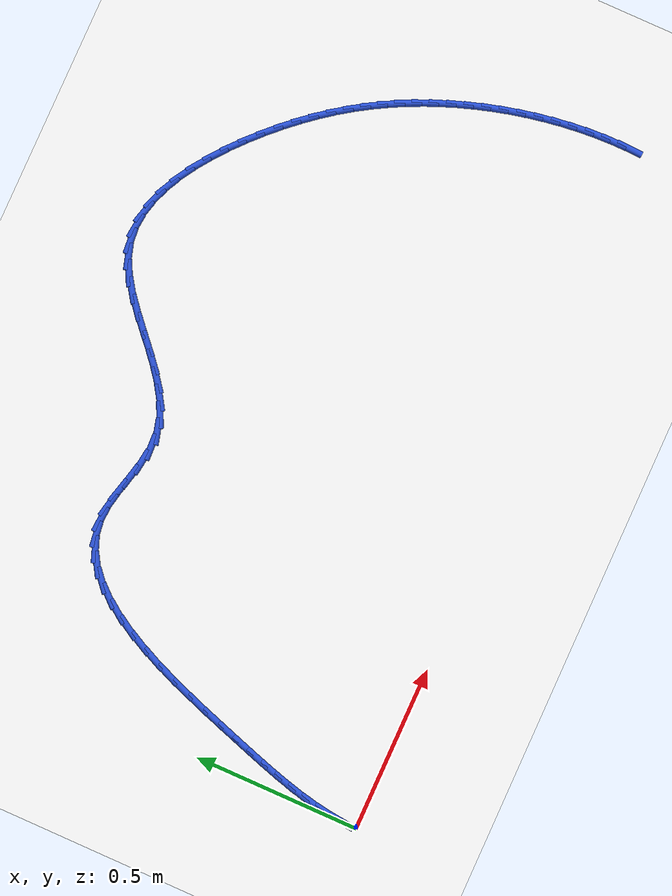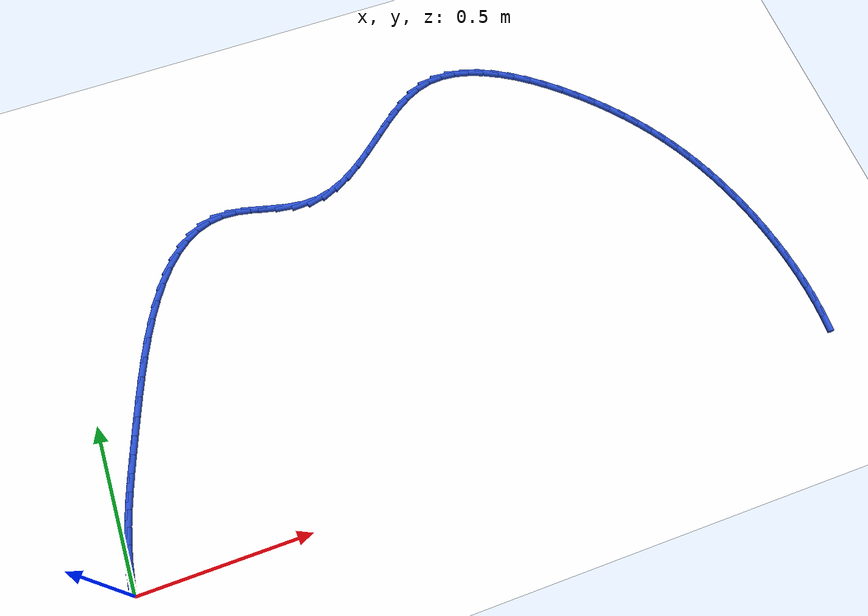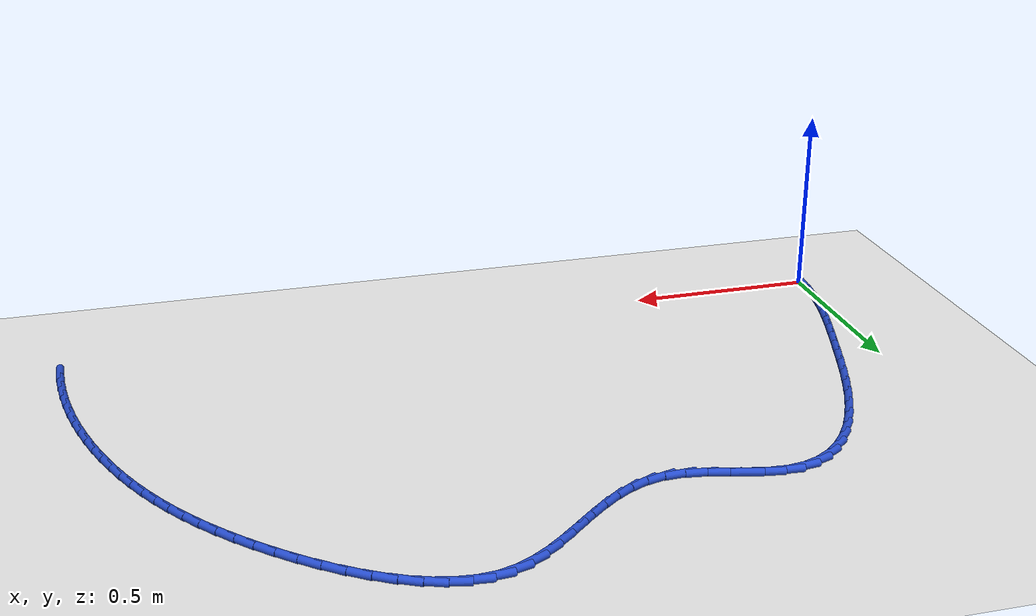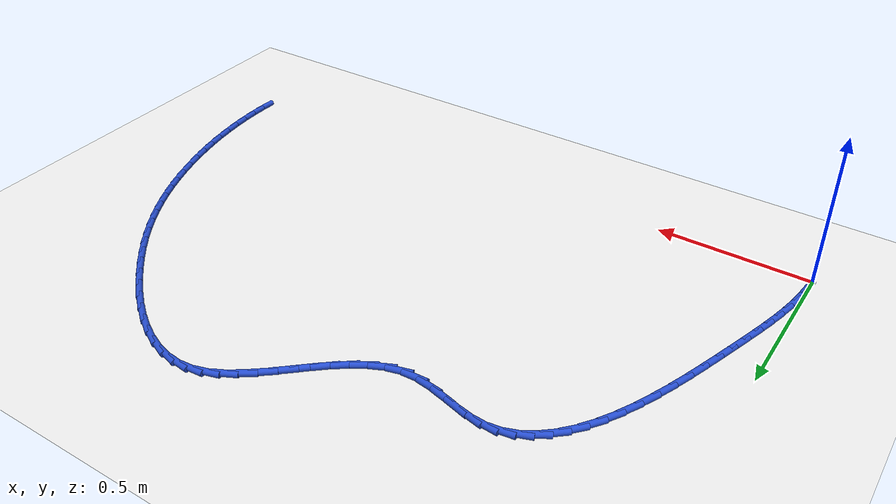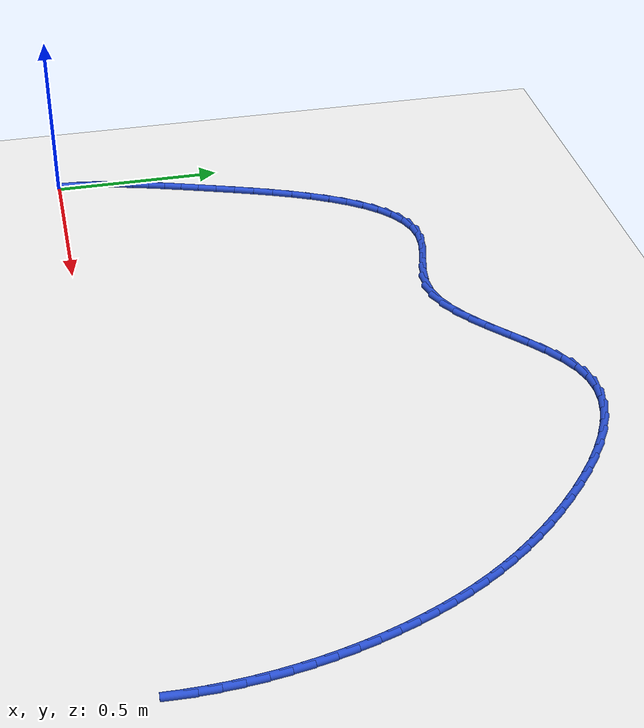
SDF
<sdf version="1.6">
 <world name="default">
  <model name="ground_plane">
   <static>1</static>
   <link name="link">
    <collision name="collision">
     <geometry><plane><normal>0 0 1</normal><size>100 100</size></plane></geometry>
     <surface><friction><ode><mu>100</mu><mu2>50</mu2></ode></friction></surface>
    </collision>
    <visual name="visual">
     <cast_shadows>0</cast_shadows>
     <geometry><plane><normal>0 0 1</normal><size>100 100</size></plane></geometry>
     <material>
      <script><uri>file://media/materials/scripts/gazebo.material</uri><name>Gazebo/WhiteGlow</name></script>
     </material>
    </visual>
   </link>
  </model>
  <model name="line">
   <link name="link_1">
    <pose>0.0027870261839059375 0.04875467694186098 0.01 0 1.57 1.455574223660273</pose>
    <collision name="collision">
     <geometry><cylinder><radius>0.01</radius><length>0.08</length></cylinder></geometry>
    </collision>
    <visual name="visual">
     <material>
      <script><name>Gazebo/Blue</name><uri>file://media/materials/scripts/gazebo.material</uri></script>
     </material>
     <geometry><cylinder><radius>0.01</radius><length>0.08</length></cylinder></geometry>
    </visual>
   </link>
   <link name="link_2">
    <pose>0.008354328767920399 0.09685867073324939 0.01 0 1.57 1.403291287682429</pose>
    <collision name="collision">
     <geometry><cylinder><radius>0.01</radius><length>0.08</length></cylinder></geometry>
    </collision>
    <visual name="visual">
     <material>
      <script><name>Gazebo/Blue</name><uri>file://media/materials/scripts/gazebo.material</uri></script>
     </material>
     <geometry><cylinder><radius>0.01</radius><length>0.08</length></cylinder></geometry>
    </visual>
   </link>
   <link name="link_3">
    <pose>0.016441676414029528 0.14468748666733733 0.01 0 1.57 1.358174855953651</pose>
    <collision name="collision">
     <geometry><cylinder><radius>0.01</radius><length>0.08</length></cylinder></geometry>
    </collision>
    <visual name="visual">
     <material>
      <script><name>Gazebo/Blue</name><uri>file://media/materials/scripts/gazebo.material</uri></script>
     </material>
     <geometry><cylinder><radius>0.01</radius><length>0.08</length></cylinder></geometry>
    </visual>
   </link>
   <link name="link_4">
    <pose>0.026788837784219467 0.19261663003729693 0.01 0 1.57 1.3210499428056335</pose>
    <collision name="collision">
     <geometry><cylinder><radius>0.01</radius><length>0.08</length></cylinder></geometry>
    </collision>
    <visual name="visual">
     <material>
      <script><name>Gazebo/Blue</name><uri>file://media/materials/scripts/gazebo.material</uri></script>
     </material>
     <geometry><cylinder><radius>0.01</radius><length>0.08</length></cylinder></geometry>
    </visual>
   </link>
   <link name="link_5">
    <pose>0.03913558154047633 0.24102160613630016 0.01 0 1.57 1.2922552643047283</pose>
    <collision name="collision">
     <geometry><cylinder><radius>0.01</radius><length>0.08</length></cylinder></geometry>
    </collision>
    <visual name="visual">
     <material>
      <script><name>Gazebo/Blue</name><uri>file://media/materials/scripts/gazebo.material</uri></script>
     </material>
     <geometry><cylinder><radius>0.01</radius><length>0.08</length></cylinder></geometry>
    </visual>
   </link>
   <link name="link_6">
    <pose>0.053221676344786285 0.2902779202575192 0.01 0 1.57 1.271719615553586</pose>
    <collision name="collision">
     <geometry><cylinder><radius>0.01</radius><length>0.08</length></cylinder></geometry>
    </collision>
    <visual name="visual">
     <material>
      <script><name>Gazebo/Blue</name><uri>file://media/materials/scripts/gazebo.material</uri></script>
     </material>
     <geometry><cylinder><radius>0.01</radius><length>0.08</length></cylinder></geometry>
    </visual>
   </link>
   <link name="link_7">
    <pose>0.06878689085913542 0.34076107769412595 0.01 0 1.57 1.2590615676463415</pose>
    <collision name="collision">
     <geometry><cylinder><radius>0.01</radius><length>0.08</length></cylinder></geometry>
    </collision>
    <visual name="visual">
     <material>
      <script><name>Gazebo/Blue</name><uri>file://media/materials/scripts/gazebo.material</uri></script>
     </material>
     <geometry><cylinder><radius>0.01</radius><length>0.08</length></cylinder></geometry>
    </visual>
   </link>
   <link name="link_8">
    <pose>0.0855709937455099 0.3928465837392928 0.01 0 1.57 1.2536560702925004</pose>
    <collision name="collision">
     <geometry><cylinder><radius>0.01</radius><length>0.08</length></cylinder></geometry>
    </collision>
    <visual name="visual">
     <material>
      <script><name>Gazebo/Blue</name><uri>file://media/materials/scripts/gazebo.material</uri></script>
     </material>
     <geometry><cylinder><radius>0.01</radius><length>0.08</length></cylinder></geometry>
    </visual>
   </link>
   <link name="link_9">
    <pose>0.10331470347014347 0.4469072296235097 0.01 0 1.57 1.2507052799884115</pose>
    <collision name="collision">
     <geometry><cylinder><radius>0.01</radius><length>0.08</length></cylinder></geometry>
    </collision>
    <visual name="visual">
     <material>
      <script><name>Gazebo/Blue</name><uri>file://media/materials/scripts/gazebo.material</uri></script>
     </material>
     <geometry><cylinder><radius>0.01</radius><length>0.08</length></cylinder></geometry>
    </visual>
   </link>
   <link name="link_10">
    <pose>0.12188962666116884 0.5029417940619865 0.01 0 1.57 1.2418944668132033</pose>
    <collision name="collision">
     <geometry><cylinder><radius>0.01</radius><length>0.08</length></cylinder></geometry>
    </collision>
    <visual name="visual">
     <material>
      <script><name>Gazebo/Blue</name><uri>file://media/materials/scripts/gazebo.material</uri></script>
     </material>
     <geometry><cylinder><radius>0.01</radius><length>0.08</length></cylinder></geometry>
    </visual>
   </link>
   <link name="link_11">
    <pose>0.14143064655290796 0.5601967436871068 0.01 0 1.57 1.2263753570486027</pose>
    <collision name="collision">
     <geometry><cylinder><radius>0.01</radius><length>0.08</length></cylinder></geometry>
    </collision>
    <visual name="visual">
     <material>
      <script><name>Gazebo/Blue</name><uri>file://media/materials/scripts/gazebo.material</uri></script>
     </material>
     <geometry><cylinder><radius>0.01</radius><length>0.08</length></cylinder></geometry>
    </visual>
   </link>
   <link name="link_12">
    <pose>0.16210420102167475 0.6178283778399654 0.01 0 1.57 1.2038337937438826</pose>
    <collision name="collision">
     <geometry><cylinder><radius>0.01</radius><length>0.08</length></cylinder></geometry>
    </collision>
    <visual name="visual">
     <material>
      <script><name>Gazebo/Blue</name><uri>file://media/materials/scripts/gazebo.material</uri></script>
     </material>
     <geometry><cylinder><radius>0.01</radius><length>0.08</length></cylinder></geometry>
    </visual>
   </link>
   <link name="link_13">
    <pose>0.18407672794378316 0.6749929958616567 0.01 0 1.57 1.1734834334014868</pose>
    <collision name="collision">
     <geometry><cylinder><radius>0.01</radius><length>0.08</length></cylinder></geometry>
    </collision>
    <visual name="visual">
     <material>
      <script><name>Gazebo/Blue</name><uri>file://media/materials/scripts/gazebo.material</uri></script>
     </material>
     <geometry><cylinder><radius>0.01</radius><length>0.08</length></cylinder></geometry>
    </visual>
   </link>
   <link name="link_14">
    <pose>0.20751466519554707 0.7308468970932753 0.01 0 1.57 1.1340158557307733</pose>
    <collision name="collision">
     <geometry><cylinder><radius>0.01</radius><length>0.08</length></cylinder></geometry>
    </collision>
    <visual name="visual">
     <material>
      <script><name>Gazebo/Blue</name><uri>file://media/materials/scripts/gazebo.material</uri></script>
     </material>
     <geometry><cylinder><radius>0.01</radius><length>0.08</length></cylinder></geometry>
    </visual>
   </link>
   <link name="link_15">
    <pose>0.23258445065328057 0.7845463808759163 0.01 0 1.57 1.0834939866862894</pose>
    <collision name="collision">
     <geometry><cylinder><radius>0.01</radius><length>0.08</length></cylinder></geometry>
    </collision>
    <visual name="visual">
     <material>
      <script><name>Gazebo/Blue</name><uri>file://media/materials/scripts/gazebo.material</uri></script>
     </material>
     <geometry><cylinder><radius>0.01</radius><length>0.08</length></cylinder></geometry>
    </visual>
   </link>
   <link name="link_16">
    <pose>0.2594525221932976 0.8352477465506742 0.01 0 1.57 1.0192009198900167</pose>
    <collision name="collision">
     <geometry><cylinder><radius>0.01</radius><length>0.08</length></cylinder></geometry>
    </collision>
    <visual name="visual">
     <material>
      <script><name>Gazebo/Blue</name><uri>file://media/materials/scripts/gazebo.material</uri></script>
     </material>
     <geometry><cylinder><radius>0.01</radius><length>0.08</length></cylinder></geometry>
    </visual>
   </link>
   <link name="link_17">
    <pose>0.2882853176919122 0.8821072934586434 0.01 0 1.57 0.937487432368117</pose>
    <collision name="collision">
     <geometry><cylinder><radius>0.01</radius><length>0.08</length></cylinder></geometry>
    </collision>
    <visual name="visual">
     <material>
      <script><name>Gazebo/Blue</name><uri>file://media/materials/scripts/gazebo.material</uri></script>
     </material>
     <geometry><cylinder><radius>0.01</radius><length>0.08</length></cylinder></geometry>
    </visual>
   </link>
   <link name="link_18">
    <pose>0.319249275025438 0.9242813209409185 0.01 0 1.57 0.8337573164377134</pose>
    <collision name="collision">
     <geometry><cylinder><radius>0.01</radius><length>0.08</length></cylinder></geometry>
    </collision>
    <visual name="visual">
     <material>
      <script><name>Gazebo/Blue</name><uri>file://media/materials/scripts/gazebo.material</uri></script>
     </material>
     <geometry><cylinder><radius>0.01</radius><length>0.08</length></cylinder></geometry>
    </visual>
   </link>
   <link name="link_19">
    <pose>0.35251083207018935 0.9609261283385949 0.01 0 1.57 0.7029503967403277</pose>
    <collision name="collision">
     <geometry><cylinder><radius>0.01</radius><length>0.08</length></cylinder></geometry>
    </collision>
    <visual name="visual">
     <material>
      <script><name>Gazebo/Blue</name><uri>file://media/materials/scripts/gazebo.material</uri></script>
     </material>
     <geometry><cylinder><radius>0.01</radius><length>0.08</length></cylinder></geometry>
    </visual>
   </link>
   <link name="link_20">
    <pose>0.38823642670247993 0.9911980149927662 0.01 0 1.57 0.5412170438605266</pose>
    <collision name="collision">
     <geometry><cylinder><radius>0.01</radius><length>0.08</length></cylinder></geometry>
    </collision>
    <visual name="visual">
     <material>
      <script><name>Gazebo/Blue</name><uri>file://media/materials/scripts/gazebo.material</uri></script>
     </material>
     <geometry><cylinder><radius>0.01</radius><length>0.08</length></cylinder></geometry>
    </visual>
   </link>
   <link name="link_21">
    <pose>0.42659249679862393 1.0142532802445279 0.01 0 1.57 0.34941946381717975</pose>
    <collision name="collision">
     <geometry><cylinder><radius>0.01</radius><length>0.08</length></cylinder></geometry>
    </collision>
    <visual name="visual">
     <material>
      <script><name>Gazebo/Blue</name><uri>file://media/materials/scripts/gazebo.material</uri></script>
     </material>
     <geometry><cylinder><radius>0.01</radius><length>0.08</length></cylinder></geometry>
    </visual>
   </link>
   <link name="link_22">
    <pose>0.4677454802349351 1.029248223434974 0.01 0 1.57 0.1371976080069714</pose>
    <collision name="collision">
     <geometry><cylinder><radius>0.01</radius><length>0.08</length></cylinder></geometry>
    </collision>
    <visual name="visual">
     <material>
      <script><name>Gazebo/Blue</name><uri>file://media/materials/scripts/gazebo.material</uri></script>
     </material>
     <geometry><cylinder><radius>0.01</radius><length>0.08</length></cylinder></geometry>
    </visual>
   </link>
   <link name="link_23">
    <pose>0.5118618148877275 1.0353391439051995 0.01 0 1.57 -0.07048215105526898</pose>
    <collision name="collision">
     <geometry><cylinder><radius>0.01</radius><length>0.08</length></cylinder></geometry>
    </collision>
    <visual name="visual">
     <material>
      <script><name>Gazebo/Blue</name><uri>file://media/materials/scripts/gazebo.material</uri></script>
     </material>
     <geometry><cylinder><radius>0.01</radius><length>0.08</length></cylinder></geometry>
    </visual>
   </link>
   <link name="link_24">
    <pose>0.5590275122081958 1.0320092883298853 0.01 0 1.57 -0.20474373316825215</pose>
    <collision name="collision">
     <geometry><cylinder><radius>0.01</radius><length>0.08</length></cylinder></geometry>
    </collision>
    <visual name="visual">
     <material>
      <script><name>Gazebo/Blue</name><uri>file://media/materials/scripts/gazebo.material</uri></script>
     </material>
     <geometry><cylinder><radius>0.01</radius><length>0.08</length></cylinder></geometry>
    </visual>
   </link>
   <link name="link_25">
    <pose>0.6085969756556932 1.0217160164542238 0.01 0 1.57 -0.25378165518661827</pose>
    <collision name="collision">
     <geometry><cylinder><radius>0.01</radius><length>0.08</length></cylinder></geometry>
    </collision>
    <visual name="visual">
     <material>
      <script><name>Gazebo/Blue</name><uri>file://media/materials/scripts/gazebo.material</uri></script>
     </material>
     <geometry><cylinder><radius>0.01</radius><length>0.08</length></cylinder></geometry>
    </visual>
   </link>
   <link name="link_26">
    <pose>0.6595340803596135 1.008504253254374 0.01 0 1.57 -0.23124023984671754</pose>
    <collision name="collision">
     <geometry><cylinder><radius>0.01</radius><length>0.08</length></cylinder></geometry>
    </collision>
    <visual name="visual">
     <material>
      <script><name>Gazebo/Blue</name><uri>file://media/materials/scripts/gazebo.material</uri></script>
     </material>
     <geometry><cylinder><radius>0.01</radius><length>0.08</length></cylinder></geometry>
    </visual>
   </link>
   <link name="link_27">
    <pose>0.7107990376394291 0.9964338177277346 0.01 0 1.57 -0.13505567940816368</pose>
    <collision name="collision">
     <geometry><cylinder><radius>0.01</radius><length>0.08</length></cylinder></geometry>
    </collision>
    <visual name="visual">
     <material>
      <script><name>Gazebo/Blue</name><uri>file://media/materials/scripts/gazebo.material</uri></script>
     </material>
     <geometry><cylinder><radius>0.01</radius><length>0.08</length></cylinder></geometry>
    </visual>
   </link>
   <link name="link_28">
    <pose>0.7613520588146127 0.9895645288717068 0.01 0 1.57 0.046825465814953546</pose>
    <collision name="collision">
     <geometry><cylinder><radius>0.01</radius><length>0.08</length></cylinder></geometry>
    </collision>
    <visual name="visual">
     <material>
      <script><name>Gazebo/Blue</name><uri>file://media/materials/scripts/gazebo.material</uri></script>
     </material>
     <geometry><cylinder><radius>0.01</radius><length>0.08</length></cylinder></geometry>
    </visual>
   </link>
   <link name="link_29">
    <pose>0.8101775216296122 0.9918524763591821 0.01 0 1.57 0.26447070230103303</pose>
    <collision name="collision">
     <geometry><cylinder><radius>0.01</radius><length>0.08</length></cylinder></geometry>
    </collision>
    <visual name="visual">
     <material>
      <script><name>Gazebo/Blue</name><uri>file://media/materials/scripts/gazebo.material</uri></script>
     </material>
     <geometry><cylinder><radius>0.01</radius><length>0.08</length></cylinder></geometry>
    </visual>
   </link>
   <link name="link_30">
    <pose>0.8569000542258998 1.00450560894977 0.01 0 1.57 0.44192383713737715</pose>
    <collision name="collision">
     <geometry><cylinder><radius>0.01</radius><length>0.08</length></cylinder></geometry>
    </collision>
    <visual name="visual">
     <material>
      <script><name>Gazebo/Blue</name><uri>file://media/materials/scripts/gazebo.material</uri></script>
     </material>
     <geometry><cylinder><radius>0.01</radius><length>0.08</length></cylinder></geometry>
    </visual>
   </link>
   <link name="link_31">
    <pose>0.9018352759688302 1.0257659401035617 0.01 0 1.57 0.5713254970687769</pose>
    <collision name="collision">
     <geometry><cylinder><radius>0.01</radius><length>0.08</length></cylinder></geometry>
    </collision>
    <visual name="visual">
     <material>
      <script><name>Gazebo/Blue</name><uri>file://media/materials/scripts/gazebo.material</uri></script>
     </material>
     <geometry><cylinder><radius>0.01</radius><length>0.08</length></cylinder></geometry>
    </visual>
   </link>
   <link name="link_32">
    <pose>0.9453331393223067 1.0537281156363023 0.01 0 1.57 0.6576958909121613</pose>
    <collision name="collision">
     <geometry><cylinder><radius>0.01</radius><length>0.08</length></cylinder></geometry>
    </collision>
    <visual name="visual">
     <material>
      <script><name>Gazebo/Blue</name><uri>file://media/materials/scripts/gazebo.material</uri></script>
     </material>
     <geometry><cylinder><radius>0.01</radius><length>0.08</length></cylinder></geometry>
    </visual>
   </link>
   <link name="link_33">
    <pose>0.9877435967502327 1.0864867813637376 0.01 0 1.57 0.7076583093968649</pose>
    <collision name="collision">
     <geometry><cylinder><radius>0.01</radius><length>0.08</length></cylinder></geometry>
    </collision>
    <visual name="visual">
     <material>
      <script><name>Gazebo/Blue</name><uri>file://media/materials/scripts/gazebo.material</uri></script>
     </material>
     <geometry><cylinder><radius>0.01</radius><length>0.08</length></cylinder></geometry>
    </visual>
   </link>
   <link name="link_34">
    <pose>1.0294166007165115 1.1221365831016124 0.01 0 1.57 0.7257941228557021</pose>
    <collision name="collision">
     <geometry><cylinder><radius>0.01</radius><length>0.08</length></cylinder></geometry>
    </collision>
    <visual name="visual">
     <material>
      <script><name>Gazebo/Blue</name><uri>file://media/materials/scripts/gazebo.material</uri></script>
     </material>
     <geometry><cylinder><radius>0.01</radius><length>0.08</length></cylinder></geometry>
    </visual>
   </link>
   <link name="link_35">
    <pose>1.0707021036850466 1.1587721666656723 0.01 0 1.57 0.7136445053751762</pose>
    <collision name="collision">
     <geometry><cylinder><radius>0.01</radius><length>0.08</length></cylinder></geometry>
    </collision>
    <visual name="visual">
     <material>
      <script><name>Gazebo/Blue</name><uri>file://media/materials/scripts/gazebo.material</uri></script>
     </material>
     <geometry><cylinder><radius>0.01</radius><length>0.08</length></cylinder></geometry>
    </visual>
   </link>
   <link name="link_36">
    <pose>1.111950058119741 1.194488177871663 0.01 0 1.57 0.6694782082863653</pose>
    <collision name="collision">
     <geometry><cylinder><radius>0.01</radius><length>0.08</length></cylinder></geometry>
    </collision>
    <visual name="visual">
     <material>
      <script><name>Gazebo/Blue</name><uri>file://media/materials/scripts/gazebo.material</uri></script>
     </material>
     <geometry><cylinder><radius>0.01</radius><length>0.08</length></cylinder></geometry>
    </visual>
   </link>
   <link name="link_37">
    <pose>1.1535104164844983 1.2273792625353295 0.01 0 1.57 0.5882047038995217</pose>
    <collision name="collision">
     <geometry><cylinder><radius>0.01</radius><length>0.08</length></cylinder></geometry>
    </collision>
    <visual name="visual">
     <material>
      <script><name>Gazebo/Blue</name><uri>file://media/materials/scripts/gazebo.material</uri></script>
     </material>
     <geometry><cylinder><radius>0.01</radius><length>0.08</length></cylinder></geometry>
    </visual>
   </link>
   <link name="link_38">
    <pose>1.1957331312432213 1.2555400664724172 0.01 0 1.57 0.4619374834004188</pose>
    <collision name="collision">
     <geometry><cylinder><radius>0.01</radius><length>0.08</length></cylinder></geometry>
    </collision>
    <visual name="visual">
     <material>
      <script><name>Gazebo/Blue</name><uri>file://media/materials/scripts/gazebo.material</uri></script>
     </material>
     <geometry><cylinder><radius>0.01</radius><length>0.08</length></cylinder></geometry>
    </visual>
   </link>
   <link name="link_39">
    <pose>1.2389681548598137 1.2770652354986713 0.01 0 1.57 0.2837549110535024</pose>
    <collision name="collision">
     <geometry><cylinder><radius>0.01</radius><length>0.08</length></cylinder></geometry>
    </collision>
    <visual name="visual">
     <material>
      <script><name>Gazebo/Blue</name><uri>file://media/materials/scripts/gazebo.material</uri></script>
     </material>
     <geometry><cylinder><radius>0.01</radius><length>0.08</length></cylinder></geometry>
    </visual>
   </link>
   <link name="link_40">
    <pose>1.2835600741356075 1.2900693153601732 0.01 0 1.57 0.07974830350344746</pose>
    <collision name="collision">
     <geometry><cylinder><radius>0.01</radius><length>0.08</length></cylinder></geometry>
    </collision>
    <visual name="visual">
     <material>
      <script><name>Gazebo/Blue</name><uri>file://media/materials/scripts/gazebo.material</uri></script>
     </material>
     <geometry><cylinder><radius>0.01</radius><length>0.08</length></cylinder></geometry>
    </visual>
   </link>
   <link name="link_41">
    <pose>1.3295625745194417 1.2937457337811922 0.01 0 1.57 -0.10272631332635304</pose>
    <collision name="collision">
     <geometry><cylinder><radius>0.01</radius><length>0.08</length></cylinder></geometry>
    </collision>
    <visual name="visual">
     <material>
      <script><name>Gazebo/Blue</name><uri>file://media/materials/scripts/gazebo.material</uri></script>
     </material>
     <geometry><cylinder><radius>0.01</radius><length>0.08</length></cylinder></geometry>
    </visual>
   </link>
   <link name="link_42">
    <pose>1.3765954397768552 1.2888971537212535 0.01 0 1.57 -0.2553747519276079</pose>
    <collision name="collision">
     <geometry><cylinder><radius>0.01</radius><length>0.08</length></cylinder></geometry>
    </collision>
    <visual name="visual">
     <material>
      <script><name>Gazebo/Blue</name><uri>file://media/materials/scripts/gazebo.material</uri></script>
     </material>
     <geometry><cylinder><radius>0.01</radius><length>0.08</length></cylinder></geometry>
    </visual>
   </link>
   <link name="link_43">
    <pose>1.4242430468497547 1.276457553390212 0.01 0 1.57 -0.3797485571304839</pose>
    <collision name="collision">
     <geometry><cylinder><radius>0.01</radius><length>0.08</length></cylinder></geometry>
    </collision>
    <visual name="visual">
     <material>
      <script><name>Gazebo/Blue</name><uri>file://media/materials/scripts/gazebo.material</uri></script>
     </material>
     <geometry><cylinder><radius>0.01</radius><length>0.08</length></cylinder></geometry>
    </visual>
   </link>
   <link name="link_44">
    <pose>1.472089772680048 1.2573609109979225 0.01 0 1.57 -0.48037813025264886</pose>
    <collision name="collision">
     <geometry><cylinder><radius>0.01</radius><length>0.08</length></cylinder></geometry>
    </collision>
    <visual name="visual">
     <material>
      <script><name>Gazebo/Blue</name><uri>file://media/materials/scripts/gazebo.material</uri></script>
     </material>
     <geometry><cylinder><radius>0.01</radius><length>0.08</length></cylinder></geometry>
    </visual>
   </link>
   <link name="link_45">
    <pose>1.5197199942096387 1.2325412047542388 0.01 0 1.57 -0.5621866305383663</pose>
    <collision name="collision">
     <geometry><cylinder><radius>0.01</radius><length>0.08</length></cylinder></geometry>
    </collision>
    <visual name="visual">
     <material>
      <script><name>Gazebo/Blue</name><uri>file://media/materials/scripts/gazebo.material</uri></script>
     </material>
     <geometry><cylinder><radius>0.01</radius><length>0.08</length></cylinder></geometry>
    </visual>
   </link>
   <link name="link_46">
    <pose>1.5667180883804355 1.202932412869015 0.01 0 1.57 -0.6294431630855104</pose>
    <collision name="collision">
     <geometry><cylinder><radius>0.01</radius><length>0.08</length></cylinder></geometry>
    </collision>
    <visual name="visual">
     <material>
      <script><name>Gazebo/Blue</name><uri>file://media/materials/scripts/gazebo.material</uri></script>
     </material>
     <geometry><cylinder><radius>0.01</radius><length>0.08</length></cylinder></geometry>
    </visual>
   </link>
   <link name="link_47">
    <pose>1.612668432134342 1.1694685135521061 0.01 0 1.57 -0.6855490326683987</pose>
    <collision name="collision">
     <geometry><cylinder><radius>0.01</radius><length>0.08</length></cylinder></geometry>
    </collision>
    <visual name="visual">
     <material>
      <script><name>Gazebo/Blue</name><uri>file://media/materials/scripts/gazebo.material</uri></script>
     </material>
     <geometry><cylinder><radius>0.01</radius><length>0.08</length></cylinder></geometry>
    </visual>
   </link>
   <link name="link_48">
    <pose>1.6571554024132664 1.1330834850133662 0.01 0 1.57 -0.7331392167358219</pose>
    <collision name="collision">
     <geometry><cylinder><radius>0.01</radius><length>0.08</length></cylinder></geometry>
    </collision>
    <visual name="visual">
     <material>
      <script><name>Gazebo/Blue</name><uri>file://media/materials/scripts/gazebo.material</uri></script>
     </material>
     <geometry><cylinder><radius>0.01</radius><length>0.08</length></cylinder></geometry>
    </visual>
   </link>
   <link name="link_49">
    <pose>1.699763376159114 1.0947113054626496 0.01 0 1.57 -0.7742659379264477</pose>
    <collision name="collision">
     <geometry><cylinder><radius>0.01</radius><length>0.08</length></cylinder></geometry>
    </collision>
    <visual name="visual">
     <material>
      <script><name>Gazebo/Blue</name><uri>file://media/materials/scripts/gazebo.material</uri></script>
     </material>
     <geometry><cylinder><radius>0.01</radius><length>0.08</length></cylinder></geometry>
    </visual>
   </link>
   <link name="link_50">
    <pose>1.7400770391479747 1.0552853584619604 0.01 0 1.57 -0.8120348778406468</pose>
    <collision name="collision">
     <geometry><cylinder><radius>0.01</radius><length>0.08</length></cylinder></geometry>
    </collision>
    <visual name="visual">
     <material>
      <script><name>Gazebo/Blue</name><uri>file://media/materials/scripts/gazebo.material</uri></script>
     </material>
     <geometry><cylinder><radius>0.01</radius><length>0.08</length></cylinder></geometry>
    </visual>
   </link>
   <link name="link_51">
    <pose>1.777814674057478 1.0154817920904236 0.01 0 1.57 -0.8508529733878075</pose>
    <collision name="collision">
     <geometry><cylinder><radius>0.01</radius><length>0.08</length></cylinder></geometry>
    </collision>
    <visual name="visual">
     <material>
      <script><name>Gazebo/Blue</name><uri>file://media/materials/scripts/gazebo.material</uri></script>
     </material>
     <geometry><cylinder><radius>0.01</radius><length>0.08</length></cylinder></geometry>
    </visual>
   </link>
   <link name="link_52">
    <pose>1.813036212894146 0.9753189223286682 0.01 0 1.57 -0.8910721220932384</pose>
    <collision name="collision">
     <geometry><cylinder><radius>0.01</radius><length>0.08</length></cylinder></geometry>
    </collision>
    <visual name="visual">
     <material>
      <script><name>Gazebo/Blue</name><uri>file://media/materials/scripts/gazebo.material</uri></script>
     </material>
     <geometry><cylinder><radius>0.01</radius><length>0.08</length></cylinder></geometry>
    </visual>
   </link>
   <link name="link_53">
    <pose>1.8458554231601072 0.9347114070668334 0.01 0 1.57 -0.9323311009404979</pose>
    <collision name="collision">
     <geometry><cylinder><radius>0.01</radius><length>0.08</length></cylinder></geometry>
    </collision>
    <visual name="visual">
     <material>
      <script><name>Gazebo/Blue</name><uri>file://media/materials/scripts/gazebo.material</uri></script>
     </material>
     <geometry><cylinder><radius>0.01</radius><length>0.08</length></cylinder></geometry>
    </visual>
   </link>
   <link name="link_54">
    <pose>1.876386072357492 0.8935739041950591 0.01 0 1.57 -0.9742106515285777</pose>
    <collision name="collision">
     <geometry><cylinder><radius>0.01</radius><length>0.08</length></cylinder></geometry>
    </collision>
    <visual name="visual">
     <material>
      <script><name>Gazebo/Blue</name><uri>file://media/materials/scripts/gazebo.material</uri></script>
     </material>
     <geometry><cylinder><radius>0.01</radius><length>0.08</length></cylinder></geometry>
    </visual>
   </link>
   <link name="link_55">
    <pose>1.9047419279884314 0.8518210716034837 0.01 0 1.57 -1.0162489458181112</pose>
    <collision name="collision">
     <geometry><cylinder><radius>0.01</radius><length>0.08</length></cylinder></geometry>
    </collision>
    <visual name="visual">
     <material>
      <script><name>Gazebo/Blue</name><uri>file://media/materials/scripts/gazebo.material</uri></script>
     </material>
     <geometry><cylinder><radius>0.01</radius><length>0.08</length></cylinder></geometry>
    </visual>
   </link>
   <link name="link_56">
    <pose>1.9310367575550542 0.8093675671822474 0.01 0 1.57 -1.0579617639497414</pose>
    <collision name="collision">
     <geometry><cylinder><radius>0.01</radius><length>0.08</length></cylinder></geometry>
    </collision>
    <visual name="visual">
     <material>
      <script><name>Gazebo/Blue</name><uri>file://media/materials/scripts/gazebo.material</uri></script>
     </material>
     <geometry><cylinder><radius>0.01</radius><length>0.08</length></cylinder></geometry>
    </visual>
   </link>
   <link name="link_57">
    <pose>1.9553843285594916 0.7661280488214893 0.01 0 1.57 -1.098865359921488</pose>
    <collision name="collision">
     <geometry><cylinder><radius>0.01</radius><length>0.08</length></cylinder></geometry>
    </collision>
    <visual name="visual">
     <material>
      <script><name>Gazebo/Blue</name><uri>file://media/materials/scripts/gazebo.material</uri></script>
     </material>
     <geometry><cylinder><radius>0.01</radius><length>0.08</length></cylinder></geometry>
    </visual>
   </link>
   <link name="link_58">
    <pose>1.977898408503872 0.7220171744113488 0.01 0 1.57 -1.1384994398374577</pose>
    <collision name="collision">
     <geometry><cylinder><radius>0.01</radius><length>0.08</length></cylinder></geometry>
    </collision>
    <visual name="visual">
     <material>
      <script><name>Gazebo/Blue</name><uri>file://media/materials/scripts/gazebo.material</uri></script>
     </material>
     <geometry><cylinder><radius>0.01</radius><length>0.08</length></cylinder></geometry>
    </visual>
   </link>
   <link name="link_59">
    <pose>1.9986927648903263 0.6769496018419651 0.01 0 1.57 -1.1764476515463638</pose>
    <collision name="collision">
     <geometry><cylinder><radius>0.01</radius><length>0.08</length></cylinder></geometry>
    </collision>
    <visual name="visual">
     <material>
      <script><name>Gazebo/Blue</name><uri>file://media/materials/scripts/gazebo.material</uri></script>
     </material>
     <geometry><cylinder><radius>0.01</radius><length>0.08</length></cylinder></geometry>
    </visual>
   </link>
   <link name="link_60">
    <pose>2.017881165199985 0.6308399890321844 0.01 0 1.57 -1.212616297254871</pose>
    <collision name="collision">
     <geometry><cylinder><radius>0.01</radius><length>0.08</length></cylinder></geometry>
    </collision>
    <visual name="visual">
     <material>
      <script><name>Gazebo/Blue</name><uri>file://media/materials/scripts/gazebo.material</uri></script>
     </material>
     <geometry><cylinder><radius>0.01</radius><length>0.08</length></cylinder></geometry>
    </visual>
   </link>
   <link name="link_61">
    <pose>2.0355483888272343 0.583642619864845 0.01 0 1.57 -1.2479417275420543</pose>
    <collision name="collision">
     <geometry><cylinder><radius>0.01</radius><length>0.08</length></cylinder></geometry>
    </collision>
    <visual name="visual">
     <material>
      <script><name>Gazebo/Blue</name><uri>file://media/materials/scripts/gazebo.material</uri></script>
     </material>
     <geometry><cylinder><radius>0.01</radius><length>0.08</length></cylinder></geometry>
    </visual>
   </link>
   <link name="link_62">
    <pose>2.0516663725087176 0.5354660312141015 0.01 0 1.57 -1.2828942968265042</pose>
    <collision name="collision">
     <geometry><cylinder><radius>0.01</radius><length>0.08</length></cylinder></geometry>
    </collision>
    <visual name="visual">
     <material>
      <script><name>Gazebo/Blue</name><uri>file://media/materials/scripts/gazebo.material</uri></script>
     </material>
     <geometry><cylinder><radius>0.01</radius><length>0.08</length></cylinder></geometry>
    </visual>
   </link>
   <link name="link_63">
    <pose>2.0661795989995793 0.4864562888359562 0.01 0 1.57 -1.3177145729441209</pose>
    <collision name="collision">
     <geometry><cylinder><radius>0.01</radius><length>0.08</length></cylinder></geometry>
    </collision>
    <visual name="visual">
     <material>
      <script><name>Gazebo/Blue</name><uri>file://media/materials/scripts/gazebo.material</uri></script>
     </material>
     <geometry><cylinder><radius>0.01</radius><length>0.08</length></cylinder></geometry>
    </visual>
   </link>
   <link name="link_64">
    <pose>2.079032551054962 0.43675945848641207 0.01 0 1.57 -1.352635926681079</pose>
    <collision name="collision">
     <geometry><cylinder><radius>0.01</radius><length>0.08</length></cylinder></geometry>
    </collision>
    <visual name="visual">
     <material>
      <script><name>Gazebo/Blue</name><uri>file://media/materials/scripts/gazebo.material</uri></script>
     </material>
     <geometry><cylinder><radius>0.01</radius><length>0.08</length></cylinder></geometry>
    </visual>
   </link>
   <link name="link_65">
    <pose>2.0901697114300095 0.38652160592147156 0.01 0 1.57 -1.3878878243471289</pose>
    <collision name="collision">
     <geometry><cylinder><radius>0.01</radius><length>0.08</length></cylinder></geometry>
    </collision>
    <visual name="visual">
     <material>
      <script><name>Gazebo/Blue</name><uri>file://media/materials/scripts/gazebo.material</uri></script>
     </material>
     <geometry><cylinder><radius>0.01</radius><length>0.08</length></cylinder></geometry>
    </visual>
   </link>
   <link name="link_66">
    <pose>2.0995355628798653 0.33588879689713674 0.01 0 1.57 -1.4236988229936416</pose>
    <collision name="collision">
     <geometry><cylinder><radius>0.01</radius><length>0.08</length></cylinder></geometry>
    </collision>
    <visual name="visual">
     <material>
      <script><name>Gazebo/Blue</name><uri>file://media/materials/scripts/gazebo.material</uri></script>
     </material>
     <geometry><cylinder><radius>0.01</radius><length>0.08</length></cylinder></geometry>
    </visual>
   </link>
   <link name="link_67">
    <pose>2.1070745881596724 0.28500709716941114 0.01 0 1.57 -1.4602992457787685</pose>
    <collision name="collision">
     <geometry><cylinder><radius>0.01</radius><length>0.08</length></cylinder></geometry>
    </collision>
    <visual name="visual">
     <material>
      <script><name>Gazebo/Blue</name><uri>file://media/materials/scripts/gazebo.material</uri></script>
     </material>
     <geometry><cylinder><radius>0.01</radius><length>0.08</length></cylinder></geometry>
    </visual>
   </link>
   <link name="link_68">
    <pose>2.1127312700245753 0.2340225724942966 0.01 0 1.57 -1.4979234873334326</pose>
    <collision name="collision">
     <geometry><cylinder><radius>0.01</radius><length>0.08</length></cylinder></geometry>
    </collision>
    <visual name="visual">
     <material>
      <script><name>Gazebo/Blue</name><uri>file://media/materials/scripts/gazebo.material</uri></script>
     </material>
     <geometry><cylinder><radius>0.01</radius><length>0.08</length></cylinder></geometry>
    </visual>
   </link>
   <link name="link_69">
    <pose>2.116450091229716 0.18308128862779643 0.01 0 1.57 -1.5368118580601426</pose>
    <collision name="collision">
     <geometry><cylinder><radius>0.01</radius><length>0.08</length></cylinder></geometry>
    </collision>
    <visual name="visual">
     <material>
      <script><name>Gazebo/Blue</name><uri>file://media/materials/scripts/gazebo.material</uri></script>
     </material>
     <geometry><cylinder><radius>0.01</radius><length>0.08</length></cylinder></geometry>
    </visual>
   </link>
   <link name="link_70">
    <pose>2.118175534530239 0.1323293113259126 0.01 0 1.57 1.564454005626136</pose>
    <collision name="collision">
     <geometry><cylinder><radius>0.01</radius><length>0.08</length></cylinder></geometry>
    </collision>
    <visual name="visual">
     <material>
      <script><name>Gazebo/Blue</name><uri>file://media/materials/scripts/gazebo.material</uri></script>
     </material>
     <geometry><cylinder><radius>0.01</radius><length>0.08</length></cylinder></geometry>
    </visual>
   </link>
   <link name="link_71">
    <pose>2.1178557430893012 0.08190815721797923 0.01 0 1.57 1.5243360530999805</pose>
    <collision name="collision">
     <geometry><cylinder><radius>0.01</radius><length>0.08</length></cylinder></geometry>
    </collision>
    <visual name="visual">
     <material>
      <script><name>Gazebo/Blue</name><uri>file://media/materials/scripts/gazebo.material</uri></script>
     </material>
     <geometry><cylinder><radius>0.01</radius><length>0.08</length></cylinder></geometry>
    </visual>
   </link>
  </model>
 </world>
</sdf>
